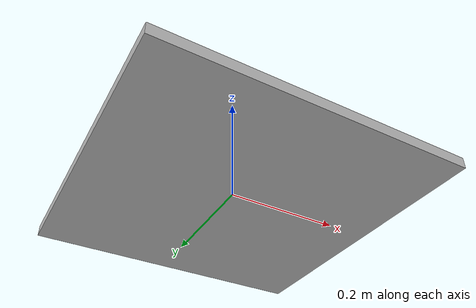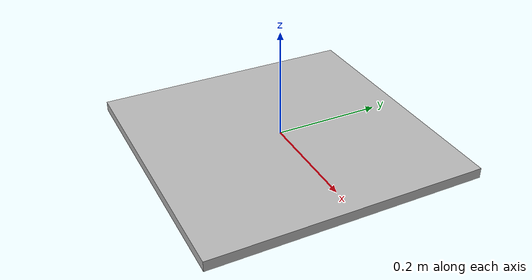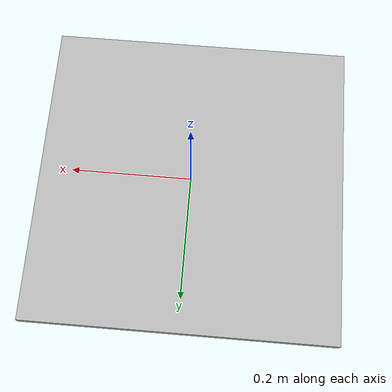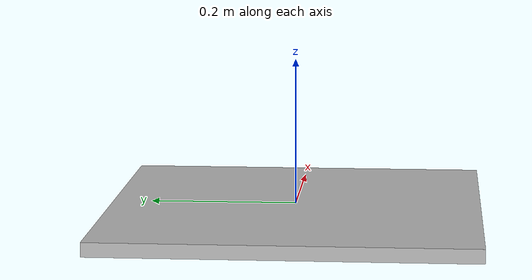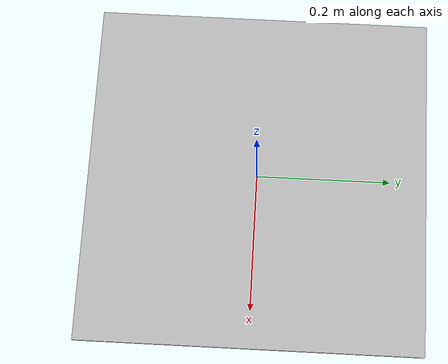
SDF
<?xml version="1.0"?>
<sdf version="1.7">
  <model name="Board">
    <link name="board_body">
      <inertial>
        <mass>2.674</mass>
        <pose>0.00 0.00 -0.01 0 0 0</pose>
        <inertia>
          <ixx>0.058</ixx>
          <ixy>0.00</ixy>
          <ixz>0.00</ixz>
          <iyy>0.058</iyy>
          <iyz>0.00</iyz>
          <izz>0.115</izz>
        </inertia>
      </inertial>
      <visual name="board_body">
        <pose> 0 0 0 0 0 0 </pose>
        <geometry>
          <mesh>
            <uri>./simpleBoard.obj</uri>
          </mesh>
        </geometry>
      </visual>
      <collision name="box_collision">
        <pose> 0 0 0 0 0 -0.0095 </pose>
        <geometry>
          <box>
            <size>0.508 0.508 0.019</size>
          </box>
        </geometry>
      </collision>
    </link>
  </model>
</sdf>
